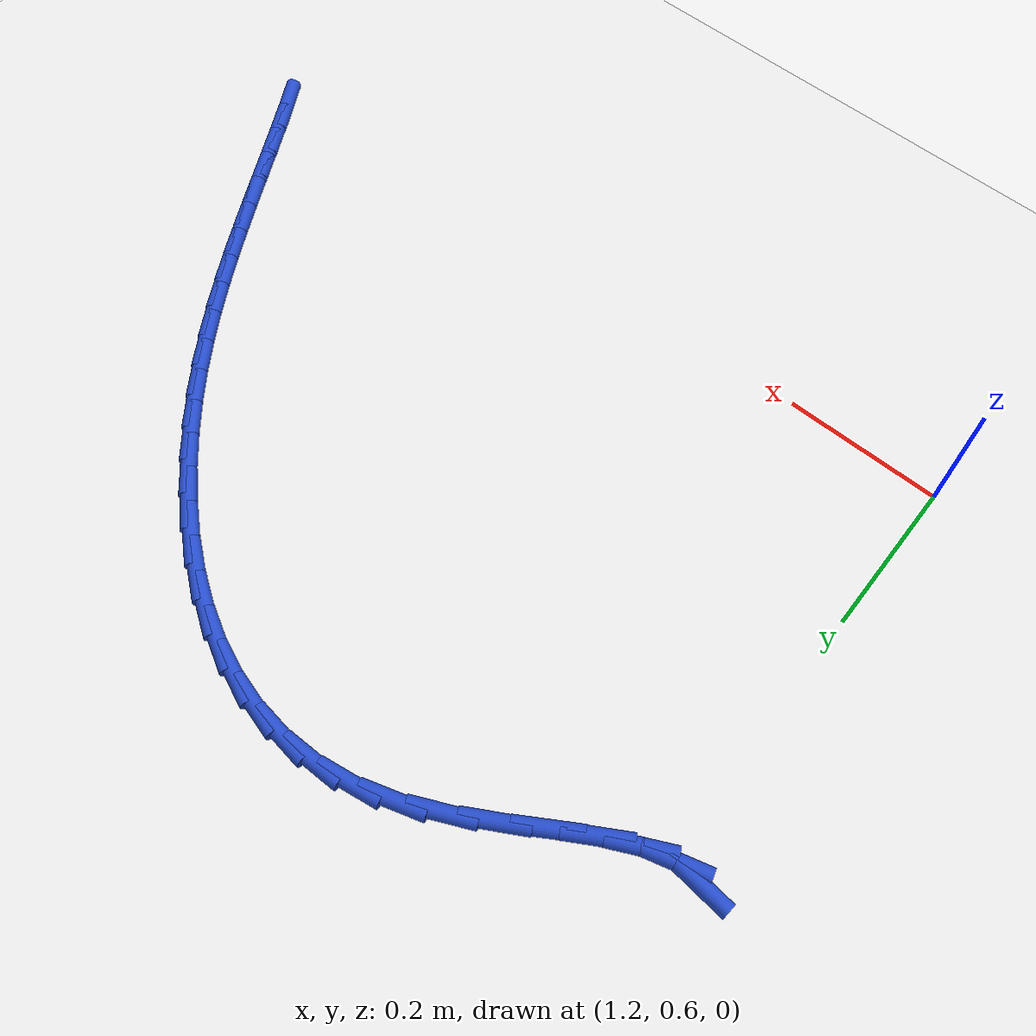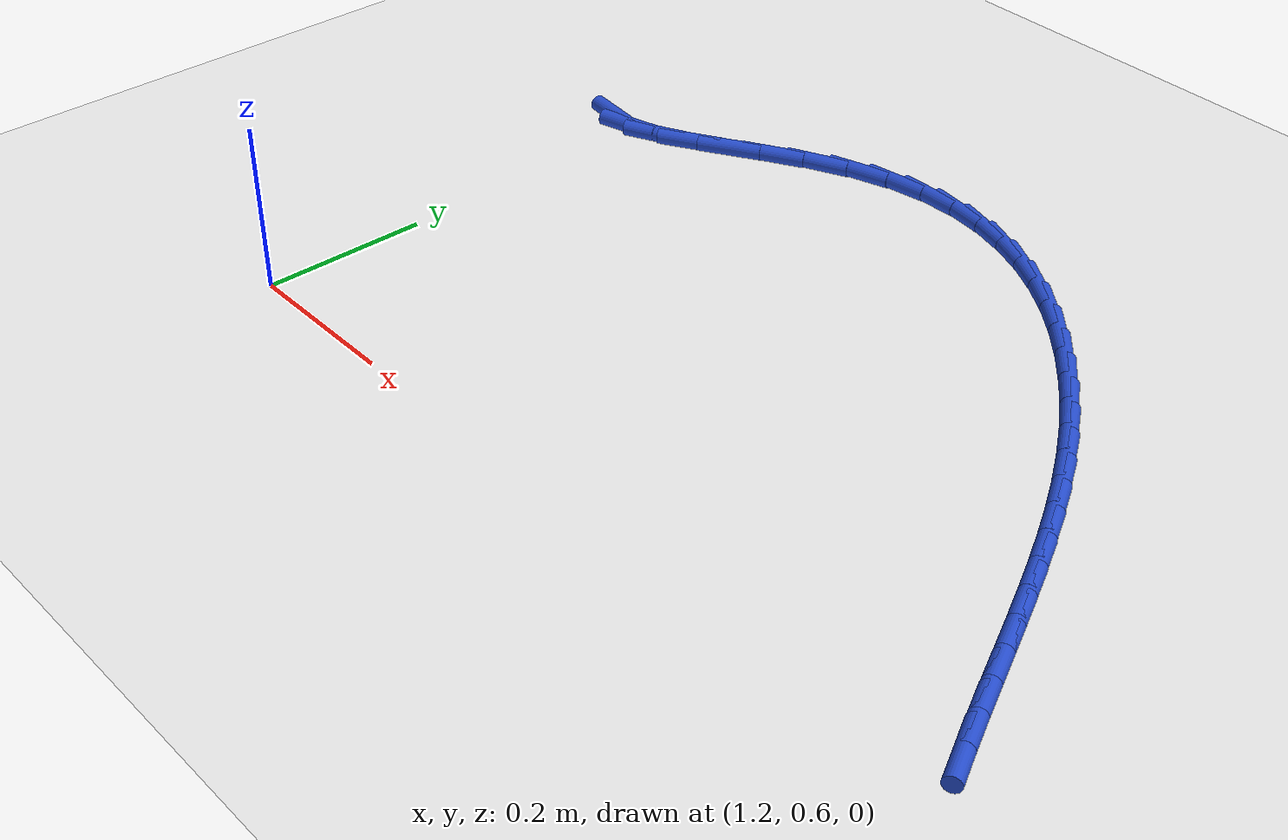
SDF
<sdf version="1.6">
 <world name="default">
  <model name="ground_plane">
   <static>1</static>
   <link name="link">
    <collision name="collision">
     <geometry><plane><normal>0 0 1</normal><size>100 100</size></plane></geometry>
     <surface><friction><ode><mu>100</mu><mu2>50</mu2></ode></friction></surface>
    </collision>
    <visual name="visual">
     <cast_shadows>0</cast_shadows>
     <geometry><plane><normal>0 0 1</normal><size>100 100</size></plane></geometry>
     <material>
      <script><uri>file://media/materials/scripts/gazebo.material</uri><name>Gazebo/WhiteGlow</name></script>
     </material>
    </visual>
   </link>
  </model>
  <model name="line">
   <link name="link_45">
    <pose>1.1621259027546067 1.1328162985172405 0.01 0 1.57 -0.09305382350967971</pose>
    <collision name="collision">
     <geometry><cylinder><radius>0.01</radius><length>0.08</length></cylinder></geometry>
    </collision>
    <visual name="visual">
     <material>
      <script><name>Gazebo/Blue</name><uri>file://media/materials/scripts/gazebo.material</uri></script>
     </material>
     <geometry><cylinder><radius>0.01</radius><length>0.08</length></cylinder></geometry>
    </visual>
   </link>
   <link name="link_46">
    <pose>1.1932242339038175 1.1299140983286744 0.01 0 1.57 0.2766016446004508</pose>
    <collision name="collision">
     <geometry><cylinder><radius>0.01</radius><length>0.08</length></cylinder></geometry>
    </collision>
    <visual name="visual">
     <material>
      <script><name>Gazebo/Blue</name><uri>file://media/materials/scripts/gazebo.material</uri></script>
     </material>
     <geometry><cylinder><radius>0.01</radius><length>0.08</length></cylinder></geometry>
    </visual>
   </link>
   <link name="link_47">
    <pose>1.2302846927514741 1.1404347675274107 0.01 0 1.57 0.4514361941164053</pose>
    <collision name="collision">
     <geometry><cylinder><radius>0.01</radius><length>0.08</length></cylinder></geometry>
    </collision>
    <visual name="visual">
     <material>
      <script><name>Gazebo/Blue</name><uri>file://media/materials/scripts/gazebo.material</uri></script>
     </material>
     <geometry><cylinder><radius>0.01</radius><length>0.08</length></cylinder></geometry>
    </visual>
   </link>
   <link name="link_48">
    <pose>1.2721232758173506 1.1607192679855702 0.01 0 1.57 0.5262147834855958</pose>
    <collision name="collision">
     <geometry><cylinder><radius>0.01</radius><length>0.08</length></cylinder></geometry>
    </collision>
    <visual name="visual">
     <material>
      <script><name>Gazebo/Blue</name><uri>file://media/materials/scripts/gazebo.material</uri></script>
     </material>
     <geometry><cylinder><radius>0.01</radius><length>0.08</length></cylinder></geometry>
    </visual>
   </link>
   <link name="link_49">
    <pose>1.3175559796212208 1.187108561575275 0.01 0 1.57 0.5424051947903129</pose>
    <collision name="collision">
     <geometry><cylinder><radius>0.01</radius><length>0.08</length></cylinder></geometry>
    </collision>
    <visual name="visual">
     <material>
      <script><name>Gazebo/Blue</name><uri>file://media/materials/scripts/gazebo.material</uri></script>
     </material>
     <geometry><cylinder><radius>0.01</radius><length>0.08</length></cylinder></geometry>
    </visual>
   </link>
   <link name="link_50">
    <pose>1.36539880068286 1.2159436101686458 0.01 0 1.57 0.5127066067833038</pose>
    <collision name="collision">
     <geometry><cylinder><radius>0.01</radius><length>0.08</length></cylinder></geometry>
    </collision>
    <visual name="visual">
     <material>
      <script><name>Gazebo/Blue</name><uri>file://media/materials/scripts/gazebo.material</uri></script>
     </material>
     <geometry><cylinder><radius>0.01</radius><length>0.08</length></cylinder></geometry>
    </visual>
   </link>
   <link name="link_51">
    <pose>1.414467735522042 1.2435653756378047 0.01 0 1.57 0.43380680264647675</pose>
    <collision name="collision">
     <geometry><cylinder><radius>0.01</radius><length>0.08</length></cylinder></geometry>
    </collision>
    <visual name="visual">
     <material>
      <script><name>Gazebo/Blue</name><uri>file://media/materials/scripts/gazebo.material</uri></script>
     </material>
     <geometry><cylinder><radius>0.01</radius><length>0.08</length></cylinder></geometry>
    </visual>
   </link>
   <link name="link_52">
    <pose>1.4635789488278939 1.2663154872992304 0.01 0 1.57 0.30472834556492473</pose>
    <collision name="collision">
     <geometry><cylinder><radius>0.01</radius><length>0.08</length></cylinder></geometry>
    </collision>
    <visual name="visual">
     <material>
      <script><name>Gazebo/Blue</name><uri>file://media/materials/scripts/gazebo.material</uri></script>
     </material>
     <geometry><cylinder><radius>0.01</radius><length>0.08</length></cylinder></geometry>
    </visual>
   </link>
   <link name="link_53">
    <pose>1.5117860077109255 1.2814777967278073 0.01 0 1.57 0.16167371380117623</pose>
    <collision name="collision">
     <geometry><cylinder><radius>0.01</radius><length>0.08</length></cylinder></geometry>
    </collision>
    <visual name="visual">
     <material>
      <script><name>Gazebo/Blue</name><uri>file://media/materials/scripts/gazebo.material</uri></script>
     </material>
     <geometry><cylinder><radius>0.01</radius><length>0.08</length></cylinder></geometry>
    </visual>
   </link>
   <link name="link_54">
    <pose>1.558852517625105 1.2891542140827497 0.01 0 1.57 0.017828385980663556</pose>
    <collision name="collision">
     <geometry><cylinder><radius>0.01</radius><length>0.08</length></cylinder></geometry>
    </collision>
    <visual name="visual">
     <material>
      <script><name>Gazebo/Blue</name><uri>file://media/materials/scripts/gazebo.material</uri></script>
     </material>
     <geometry><cylinder><radius>0.01</radius><length>0.08</length></cylinder></geometry>
    </visual>
   </link>
   <link name="link_55">
    <pose>1.6046742569499564 1.2899712283025961 0.01 0 1.57 -0.12118348238183992</pose>
    <collision name="collision">
     <geometry><cylinder><radius>0.01</radius><length>0.08</length></cylinder></geometry>
    </collision>
    <visual name="visual">
     <material>
      <script><name>Gazebo/Blue</name><uri>file://media/materials/scripts/gazebo.material</uri></script>
     </material>
     <geometry><cylinder><radius>0.01</radius><length>0.08</length></cylinder></geometry>
    </visual>
   </link>
   <link name="link_56">
    <pose>1.649147004065003 1.2845553283258841 0.01 0 1.57 -0.2508211142694403</pose>
    <collision name="collision">
     <geometry><cylinder><radius>0.01</radius><length>0.08</length></cylinder></geometry>
    </collision>
    <visual name="visual">
     <material>
      <script><name>Gazebo/Blue</name><uri>file://media/materials/scripts/gazebo.material</uri></script>
     </material>
     <geometry><cylinder><radius>0.01</radius><length>0.08</length></cylinder></geometry>
    </visual>
   </link>
   <link name="link_57">
    <pose>1.6921665373497703 1.2735330030911522 0.01 0 1.57 -0.3683352056012104</pose>
    <collision name="collision">
     <geometry><cylinder><radius>0.01</radius><length>0.08</length></cylinder></geometry>
    </collision>
    <visual name="visual">
     <material>
      <script><name>Gazebo/Blue</name><uri>file://media/materials/scripts/gazebo.material</uri></script>
     </material>
     <geometry><cylinder><radius>0.01</radius><length>0.08</length></cylinder></geometry>
    </visual>
   </link>
   <link name="link_58">
    <pose>1.7336286351837813 1.2575307415369381 0.01 0 1.57 -0.4727610839869979</pose>
    <collision name="collision">
     <geometry><cylinder><radius>0.01</radius><length>0.08</length></cylinder></geometry>
    </collision>
    <visual name="visual">
     <material>
      <script><name>Gazebo/Blue</name><uri>file://media/materials/scripts/gazebo.material</uri></script>
     </material>
     <geometry><cylinder><radius>0.01</radius><length>0.08</length></cylinder></geometry>
    </visual>
   </link>
   <link name="link_59">
    <pose>1.7734290759465596 1.2371750326017794 0.01 0 1.57 -0.5644588862308467</pose>
    <collision name="collision">
     <geometry><cylinder><radius>0.01</radius><length>0.08</length></cylinder></geometry>
    </collision>
    <visual name="visual">
     <material>
      <script><name>Gazebo/Blue</name><uri>file://media/materials/scripts/gazebo.material</uri></script>
     </material>
     <geometry><cylinder><radius>0.01</radius><length>0.08</length></cylinder></geometry>
    </visual>
   </link>
   <link name="link_60">
    <pose>1.8114636380176306 1.2130923652242143 0.01 0 1.57 -0.6445583788491225</pose>
    <collision name="collision">
     <geometry><cylinder><radius>0.01</radius><length>0.08</length></cylinder></geometry>
    </collision>
    <visual name="visual">
     <material>
      <script><name>Gazebo/Blue</name><uri>file://media/materials/scripts/gazebo.material</uri></script>
     </material>
     <geometry><cylinder><radius>0.01</radius><length>0.08</length></cylinder></geometry>
    </visual>
   </link>
   <link name="link_61">
    <pose>1.847628099776518 1.1859092283427808 0.01 0 1.57 -0.7145191783988651</pose>
    <collision name="collision">
     <geometry><cylinder><radius>0.01</radius><length>0.08</length></cylinder></geometry>
    </collision>
    <visual name="visual">
     <material>
      <script><name>Gazebo/Blue</name><uri>file://media/materials/scripts/gazebo.material</uri></script>
     </material>
     <geometry><cylinder><radius>0.01</radius><length>0.08</length></cylinder></geometry>
    </visual>
   </link>
   <link name="link_62">
    <pose>1.881818239602745 1.1562521108960164 0.01 0 1.57 -0.7758570601900943</pose>
    <collision name="collision">
     <geometry><cylinder><radius>0.01</radius><length>0.08</length></cylinder></geometry>
    </collision>
    <visual name="visual">
     <material>
      <script><name>Gazebo/Blue</name><uri>file://media/materials/scripts/gazebo.material</uri></script>
     </material>
     <geometry><cylinder><radius>0.01</radius><length>0.08</length></cylinder></geometry>
    </visual>
   </link>
   <link name="link_63">
    <pose>1.9139298358758368 1.1247475018224602 0.01 0 1.57 -0.8300857080220794</pose>
    <collision name="collision">
     <geometry><cylinder><radius>0.01</radius><length>0.08</length></cylinder></geometry>
    </collision>
    <visual name="visual">
     <material>
      <script><name>Gazebo/Blue</name><uri>file://media/materials/scripts/gazebo.material</uri></script>
     </material>
     <geometry><cylinder><radius>0.01</radius><length>0.08</length></cylinder></geometry>
    </visual>
   </link>
   <link name="link_64">
    <pose>1.9438683933005378 1.0920060632692687 0.01 0 1.57 -0.8795188461749557</pose>
    <collision name="collision">
     <geometry><cylinder><radius>0.01</radius><length>0.08</length></cylinder></geometry>
    </collision>
    <visual name="visual">
     <material>
      <script><name>Gazebo/Blue</name><uri>file://media/materials/scripts/gazebo.material</uri></script>
     </material>
     <geometry><cylinder><radius>0.01</radius><length>0.08</length></cylinder></geometry>
    </visual>
   </link>
   <link name="link_65">
    <pose>1.9717119874754243 1.0583576479850987 0.01 0 1.57 -0.9249802212373145</pose>
    <collision name="collision">
     <geometry><cylinder><radius>0.01</radius><length>0.08</length></cylinder></geometry>
    </collision>
    <visual name="visual">
     <material>
      <script><name>Gazebo/Blue</name><uri>file://media/materials/scripts/gazebo.material</uri></script>
     </material>
     <geometry><cylinder><radius>0.01</radius><length>0.08</length></cylinder></geometry>
    </visual>
   </link>
   <link name="link_66">
    <pose>1.9976868856227952 1.0238909695566227 0.01 0 1.57 -0.9659194307792217</pose>
    <collision name="collision">
     <geometry><cylinder><radius>0.01</radius><length>0.08</length></cylinder></geometry>
    </collision>
    <visual name="visual">
     <material>
      <script><name>Gazebo/Blue</name><uri>file://media/materials/scripts/gazebo.material</uri></script>
     </material>
     <geometry><cylinder><radius>0.01</radius><length>0.08</length></cylinder></geometry>
    </visual>
   </link>
   <link name="link_67">
    <pose>2.0220241699544586 0.9886869065626663 0.01 0 1.57 -1.0018791171628585</pose>
    <collision name="collision">
     <geometry><cylinder><radius>0.01</radius><length>0.08</length></cylinder></geometry>
    </collision>
    <visual name="visual">
     <material>
      <script><name>Gazebo/Blue</name><uri>file://media/materials/scripts/gazebo.material</uri></script>
     </material>
     <geometry><cylinder><radius>0.01</radius><length>0.08</length></cylinder></geometry>
    </visual>
   </link>
   <link name="link_68">
    <pose>2.044954922682222 0.9528263375820559 0.01 0 1.57 -1.0325270724326674</pose>
    <collision name="collision">
     <geometry><cylinder><radius>0.01</radius><length>0.08</length></cylinder></geometry>
    </collision>
    <visual name="visual">
     <material>
      <script><name>Gazebo/Blue</name><uri>file://media/materials/scripts/gazebo.material</uri></script>
     </material>
     <geometry><cylinder><radius>0.01</radius><length>0.08</length></cylinder></geometry>
    </visual>
   </link>
   <link name="link_69">
    <pose>2.0667102260178907 0.9163901411936174 0.01 0 1.57 -1.0576403844011244</pose>
    <collision name="collision">
     <geometry><cylinder><radius>0.01</radius><length>0.08</length></cylinder></geometry>
    </collision>
    <visual name="visual">
     <material>
      <script><name>Gazebo/Blue</name><uri>file://media/materials/scripts/gazebo.material</uri></script>
     </material>
     <geometry><cylinder><radius>0.01</radius><length>0.08</length></cylinder></geometry>
    </visual>
   </link>
   <link name="link_70">
    <pose>2.087521162173273 0.8794591959761768 0.01 0 1.57 -1.077085316604985</pose>
    <collision name="collision">
     <geometry><cylinder><radius>0.01</radius><length>0.08</length></cylinder></geometry>
    </collision>
    <visual name="visual">
     <material>
      <script><name>Gazebo/Blue</name><uri>file://media/materials/scripts/gazebo.material</uri></script>
     </material>
     <geometry><cylinder><radius>0.01</radius><length>0.08</length></cylinder></geometry>
    </visual>
   </link>
   <link name="link_71">
    <pose>2.1076188133601756 0.8421143805085595 0.01 0 1.57 -1.0907968812271716</pose>
    <collision name="collision">
     <geometry><cylinder><radius>0.01</radius><length>0.08</length></cylinder></geometry>
    </collision>
    <visual name="visual">
     <material>
      <script><name>Gazebo/Blue</name><uri>file://media/materials/scripts/gazebo.material</uri></script>
     </material>
     <geometry><cylinder><radius>0.01</radius><length>0.08</length></cylinder></geometry>
    </visual>
   </link>
   <link name="link_72">
    <pose>2.127234261790406 0.8044365733695918 0.01 0 1.57 -1.098760964753192</pose>
    <collision name="collision">
     <geometry><cylinder><radius>0.01</radius><length>0.08</length></cylinder></geometry>
    </collision>
    <visual name="visual">
     <material>
      <script><name>Gazebo/Blue</name><uri>file://media/materials/scripts/gazebo.material</uri></script>
     </material>
     <geometry><cylinder><radius>0.01</radius><length>0.08</length></cylinder></geometry>
    </visual>
   </link>
   <link name="link_73">
    <pose>2.1465985896757713 0.7665066531380998 0.01 0 1.57 -1.1010007547661838</pose>
    <collision name="collision">
     <geometry><cylinder><radius>0.01</radius><length>0.08</length></cylinder></geometry>
    </collision>
    <visual name="visual">
     <material>
      <script><name>Gazebo/Blue</name><uri>file://media/materials/scripts/gazebo.material</uri></script>
     </material>
     <geometry><cylinder><radius>0.01</radius><length>0.08</length></cylinder></geometry>
    </visual>
   </link>
   <link name="link_74">
    <pose>2.165942879228078 0.728405498392909 0.01 0 1.57 -1.0975683152265825</pose>
    <collision name="collision">
     <geometry><cylinder><radius>0.01</radius><length>0.08</length></cylinder></geometry>
    </collision>
    <visual name="visual">
     <material>
      <script><name>Gazebo/Blue</name><uri>file://media/materials/scripts/gazebo.material</uri></script>
     </material>
     <geometry><cylinder><radius>0.01</radius><length>0.08</length></cylinder></geometry>
    </visual>
   </link>
   <link name="link_75">
    <pose>2.185498212659134 0.6902139877128455 0.01 0 1.57 -1.08854151376973</pose>
    <collision name="collision">
     <geometry><cylinder><radius>0.01</radius><length>0.08</length></cylinder></geometry>
    </collision>
    <visual name="visual">
     <material>
      <script><name>Gazebo/Blue</name><uri>file://media/materials/scripts/gazebo.material</uri></script>
     </material>
     <geometry><cylinder><radius>0.01</radius><length>0.08</length></cylinder></geometry>
    </visual>
   </link>
   <link name="link_76">
    <pose>2.2054956721807453 0.6520129996767355 0.01 0 1.57 -1.0740260576025773</pose>
    <collision name="collision">
     <geometry><cylinder><radius>0.01</radius><length>0.08</length></cylinder></geometry>
    </collision>
    <visual name="visual">
     <material>
      <script><name>Gazebo/Blue</name><uri>file://media/materials/scripts/gazebo.material</uri></script>
     </material>
     <geometry><cylinder><radius>0.01</radius><length>0.08</length></cylinder></geometry>
    </visual>
   </link>
  </model>
 </world>
</sdf>
